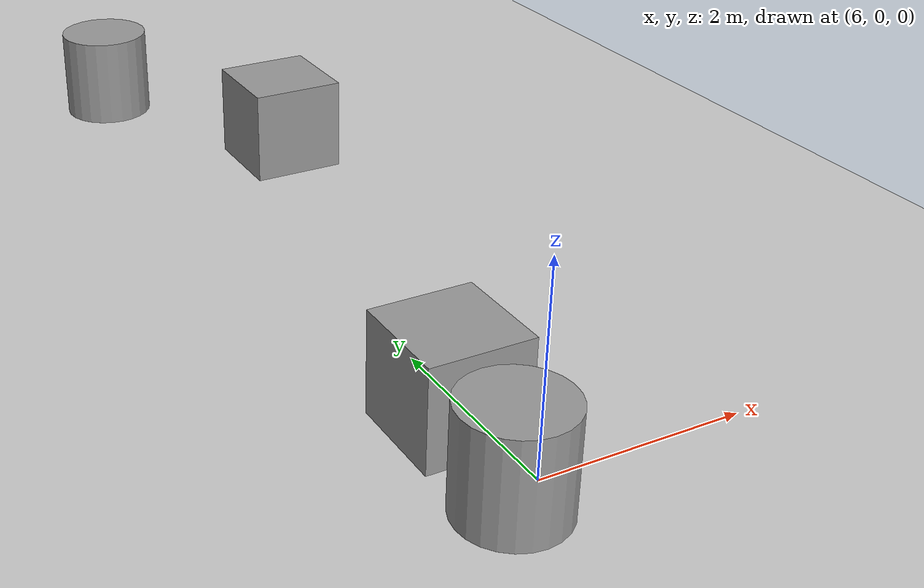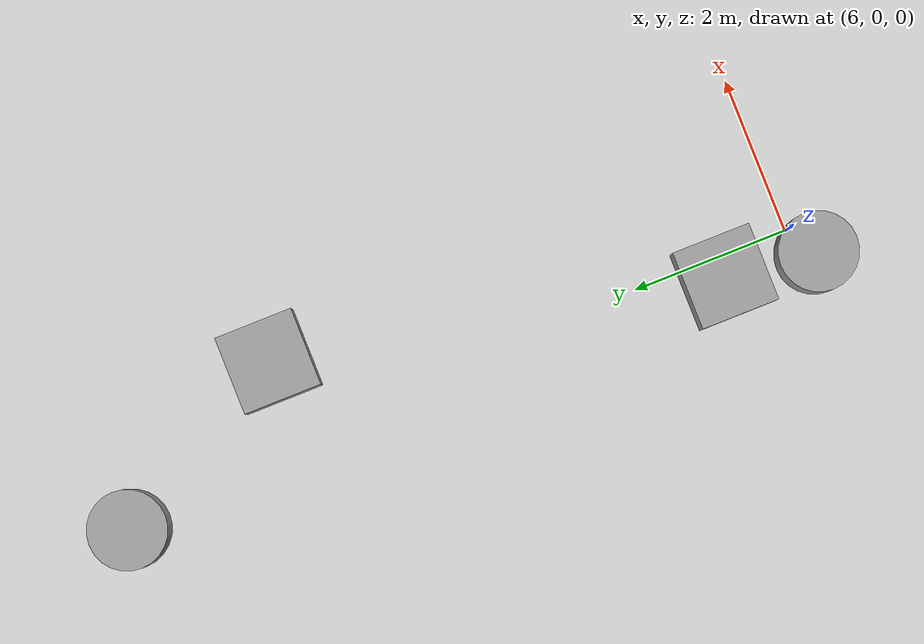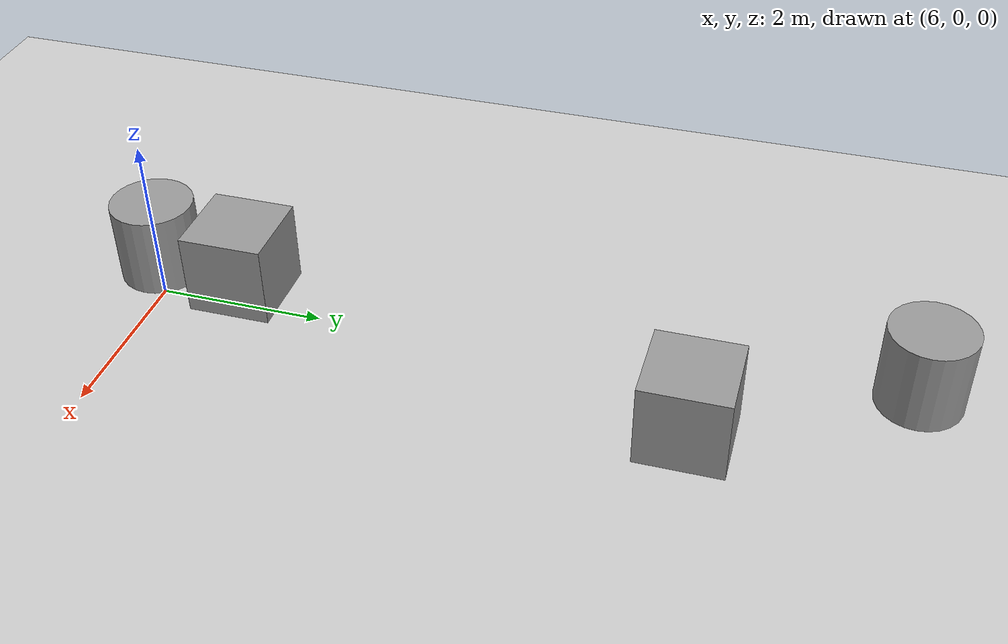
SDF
<sdf version="1.6">
 <world name="House">
  <model name="ground_plane">
   <static>1</static>
   <link name="link">
    <collision name="collision">
     <geometry><plane><normal>0 0 1</normal><size>100 100</size></plane></geometry>
     <surface>
      <contact><collide_bitmask>65535</collide_bitmask></contact>
      <friction><ode><mu>100</mu><mu2>50</mu2></ode></friction>
     </surface>
    </collision>
    <visual name="visual">
     <cast_shadows>0</cast_shadows>
     <geometry><plane><normal>0 0 1</normal><size>100 100</size></plane></geometry>
     <material>
      <script><uri>file://media/materials/scripts/gazebo.material</uri><name>Gazebo/Grey</name></script>
     </material>
    </visual>
   </link>
  </model>
  <model name="unit_box">
   <pose>5.73783 0.946725 0.5 0 -0 0</pose>
   <link name="link">
    <inertial>
     <mass>1</mass>
     <inertia>
      <ixx>0.166667</ixx>
      <ixy>0</ixy>
      <ixz>0</ixz>
      <iyy>0.166667</iyy>
      <iyz>0</iyz>
      <izz>0.166667</izz>
     </inertia>
    </inertial>
    <collision name="collision"><geometry><box><size>1 1 1</size></box></geometry></collision>
    <visual name="visual">
     <geometry><box><size>1 1 1</size></box></geometry>
     <material>
      <script><name>Gazebo/Grey</name><uri>file://media/materials/scripts/gazebo.material</uri></script>
     </material>
    </visual>
   </link>
  </model>
  <model name="unit_cylinder">
   <pose>5.54805 8.88939 0.499997 3e-06 4e-06 -0</pose>
   <link name="link">
    <inertial>
     <mass>1</mass>
     <inertia><ixx>0.145833</ixx><ixy>0</ixy><ixz>0</ixz><iyy>0.145833</iyy><iyz>0</iyz><izz>0.125</izz></inertia>
    </inertial>
    <collision name="collision">
     <geometry><cylinder><radius>0.5</radius><length>1</length></cylinder></geometry>
    </collision>
    <visual name="visual">
     <geometry><cylinder><radius>0.5</radius><length>1</length></cylinder></geometry>
     <material>
      <script><name>Gazebo/Grey</name><uri>file://media/materials/scripts/gazebo.material</uri></script>
     </material>
    </visual>
   </link>
  </model>
  <model name="unit_box_0">
   <pose>6.83488 6.53546 0.5 0 -0 0</pose>
   <link name="link">
    <inertial>
     <mass>1</mass>
     <inertia>
      <ixx>0.166667</ixx>
      <ixy>0</ixy>
      <ixz>0</ixz>
      <iyy>0.166667</iyy>
      <iyz>0</iyz>
      <izz>0.166667</izz>
     </inertia>
    </inertial>
    <collision name="collision"><geometry><box><size>1 1 1</size></box></geometry></collision>
    <visual name="visual">
     <geometry><box><size>1 1 1</size></box></geometry>
     <material>
      <script><name>Gazebo/Grey</name><uri>file://media/materials/scripts/gazebo.material</uri></script>
     </material>
    </visual>
   </link>
  </model>
  <model name="unit_cylinder_1">
   <pose>5.60112 -0.223968 0.5 0 -0 0</pose>
   <link name="link">
    <inertial>
     <mass>1</mass>
     <inertia><ixx>0.145833</ixx><ixy>0</ixy><ixz>0</ixz><iyy>0.145833</iyy><iyz>0</iyz><izz>0.125</izz></inertia>
    </inertial>
    <collision name="collision">
     <geometry><cylinder><radius>0.5</radius><length>1</length></cylinder></geometry>
    </collision>
    <visual name="visual">
     <geometry><cylinder><radius>0.5</radius><length>1</length></cylinder></geometry>
     <material>
      <script><name>Gazebo/Grey</name><uri>file://media/materials/scripts/gazebo.material</uri></script>
     </material>
    </visual>
   </link>
  </model>
 </world>
</sdf>
